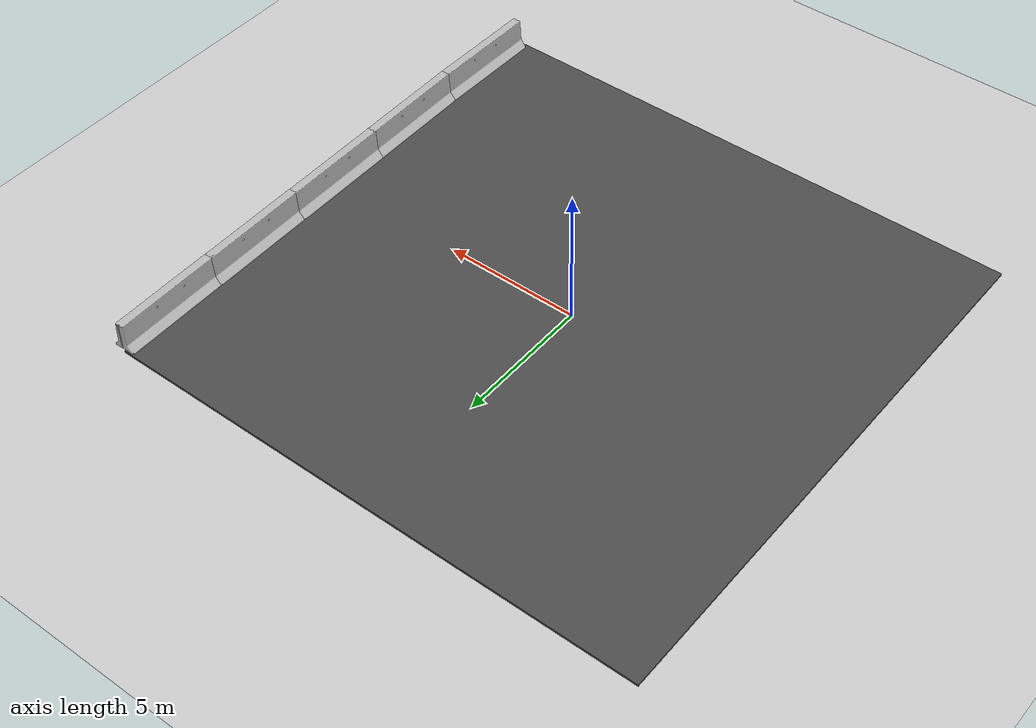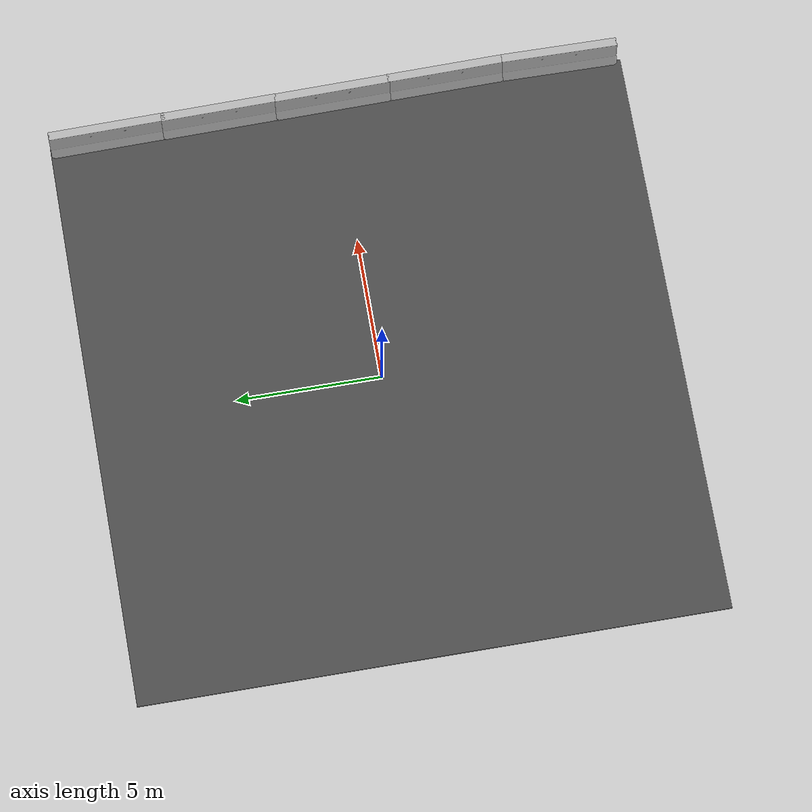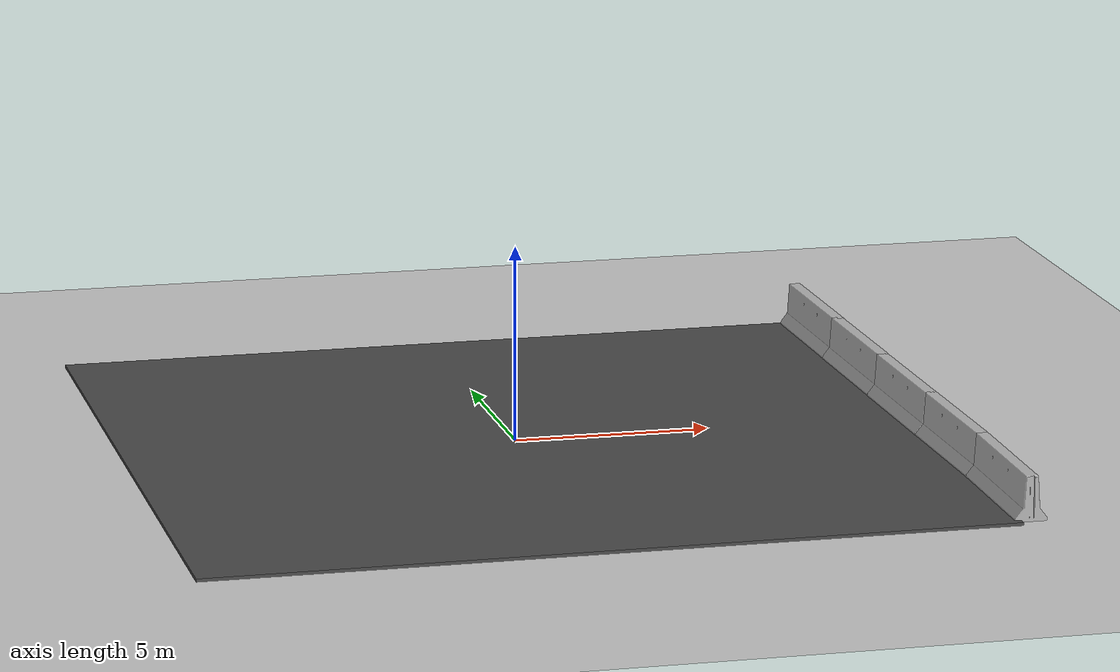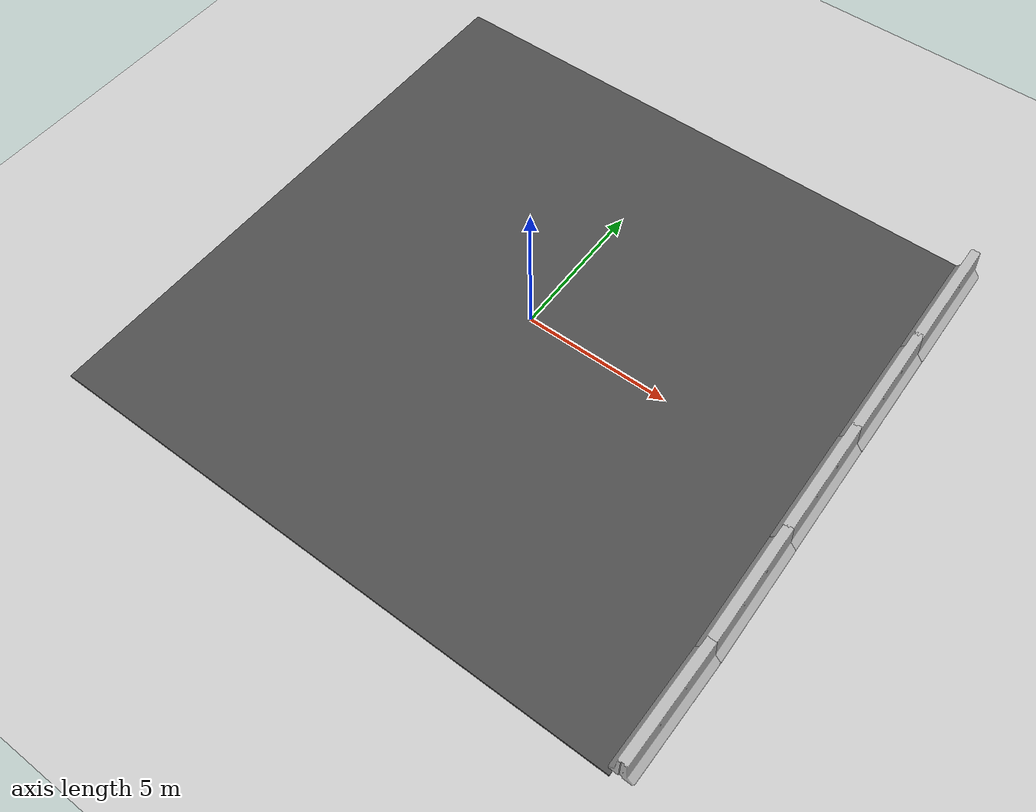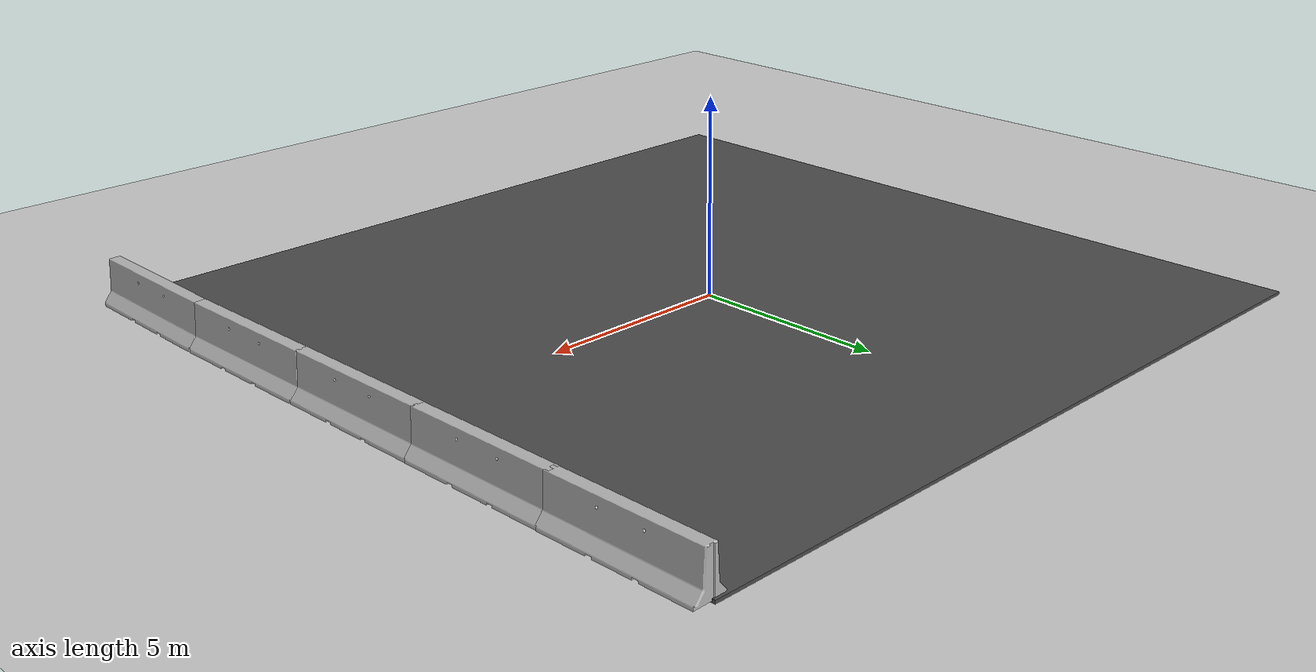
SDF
<sdf version="1.6">
 <world name="default">
  <model name="ground_plane">
   <static>1</static>
   <link name="link">
    <collision name="collision">
     <geometry><plane><normal>0 0 1</normal><size>100 100</size></plane></geometry>
     <surface><friction><ode><mu>100</mu><mu2>50</mu2></ode></friction></surface>
    </collision>
    <visual name="visual">
     <cast_shadows>0</cast_shadows>
     <geometry><plane><normal>0 0 1</normal><size>100 100</size></plane></geometry>
     <material>
      <script><uri>file://media/materials/scripts/gazebo.material</uri><name>Gazebo/Grey</name></script>
     </material>
    </visual>
    <velocity_decay><linear>0</linear><angular>0</angular></velocity_decay>
   </link>
  </model>
  <model name="asphalt_plane">
   <static>1</static>
   <link name="link">
    <collision name="collision"><geometry><box><size>20 20 0.1</size></box></geometry></collision>
    <visual name="visual">
     <cast_shadows>0</cast_shadows>
     <geometry><box><size>20 20 0.1</size></box></geometry>
     <material>
      <script>
       <uri>model://asphalt_plane/materials/scripts</uri>
       <uri>model://asphalt_plane/materials/textures</uri>
       <name>vrc/asphalt</name>
      </script>
     </material>
    </visual>
    <velocity_decay><linear>0</linear><angular>0</angular></velocity_decay>
   </link>
   <pose>0.076733 -0.110379 0 0 -0 0</pose>
  </model>
  <model name="jersey_barrier_12">
   <link name="link">
    <pose>-0.324032 -0.254007 0 0 -0 0</pose>
    <velocity_decay><linear>0</linear><angular>0</angular></velocity_decay>
    <visual name="visual">
     <geometry><mesh><uri>model://jersey_barrier/meshes/jersey_barrier.dae</uri></mesh></geometry>
     <material><shader type="pixel"/></material>
    </visual>
    <collision name="upright">
     <pose>0 0 0.5715 0 -0 0</pose>
     <geometry><box><size>4.06542 0.3063 1.143</size></box></geometry>
     <surface>
      <friction>
       <ode><mu>1</mu><mu2>1</mu2><fdir1>0 0 0</fdir1><slip1>0</slip1><slip2>0</slip2></ode>
       <torsional>
        <coefficient>1</coefficient>
        <patch_radius>0</patch_radius>
        <surface_radius>0</surface_radius>
        <use_patch_radius>1</use_patch_radius>
        <ode><slip>0</slip></ode>
       </torsional>
      </friction>
      <bounce><restitution_coefficient>0</restitution_coefficient><threshold>1e+06</threshold></bounce>
      <contact>
       <collide_without_contact>0</collide_without_contact>
       <collide_without_contact_bitmask>1</collide_without_contact_bitmask>
       <collide_bitmask>1</collide_bitmask>
       <ode>
        <soft_cfm>0</soft_cfm>
        <soft_erp>0.2</soft_erp>
        <kp>1e+13</kp>
        <kd>1</kd>
        <max_vel>0.01</max_vel>
        <min_depth>0</min_depth>
       </ode>
       <bullet>
        <split_impulse>1</split_impulse>
        <split_impulse_penetration_threshold>-0.01</split_impulse_penetration_threshold>
        <soft_cfm>0</soft_cfm>
        <soft_erp>0.2</soft_erp>
        <kp>1e+13</kp>
        <kd>1</kd>
       </bullet>
      </contact>
     </surface>
    </collision>
    <collision name="base">
     <pose>0 0 0.032258 0 -0 0</pose>
     <geometry><box><size>4.06542 0.8107 0.064516</size></box></geometry>
     <surface>
      <friction>
       <ode><mu>1</mu><mu2>1</mu2><fdir1>0 0 0</fdir1><slip1>0</slip1><slip2>0</slip2></ode>
       <torsional>
        <coefficient>1</coefficient>
        <patch_radius>0</patch_radius>
        <surface_radius>0</surface_radius>
        <use_patch_radius>1</use_patch_radius>
        <ode><slip>0</slip></ode>
       </torsional>
      </friction>
      <bounce><restitution_coefficient>0</restitution_coefficient><threshold>1e+06</threshold></bounce>
      <contact>
       <collide_without_contact>0</collide_without_contact>
       <collide_without_contact_bitmask>1</collide_without_contact_bitmask>
       <collide_bitmask>1</collide_bitmask>
       <ode>
        <soft_cfm>0</soft_cfm>
        <soft_erp>0.2</soft_erp>
        <kp>1e+13</kp>
        <kd>1</kd>
        <max_vel>0.01</max_vel>
        <min_depth>0</min_depth>
       </ode>
       <bullet>
        <split_impulse>1</split_impulse>
        <split_impulse_penetration_threshold>-0.01</split_impulse_penetration_threshold>
        <soft_cfm>0</soft_cfm>
        <soft_erp>0.2</soft_erp>
        <kp>1e+13</kp>
        <kd>1</kd>
       </bullet>
      </contact>
     </surface>
    </collision>
    <collision name="base3">
     <pose>0 0 0.2 0 -0 0</pose>
     <geometry><box><size>4.06542 0.5 0.1</size></box></geometry>
     <surface>
      <friction>
       <ode><mu>1</mu><mu2>1</mu2><fdir1>0 0 0</fdir1><slip1>0</slip1><slip2>0</slip2></ode>
       <torsional>
        <coefficient>1</coefficient>
        <patch_radius>0</patch_radius>
        <surface_radius>0</surface_radius>
        <use_patch_radius>1</use_patch_radius>
        <ode><slip>0</slip></ode>
       </torsional>
      </friction>
      <bounce><restitution_coefficient>0</restitution_coefficient><threshold>1e+06</threshold></bounce>
      <contact>
       <collide_without_contact>0</collide_without_contact>
       <collide_without_contact_bitmask>1</collide_without_contact_bitmask>
       <collide_bitmask>1</collide_bitmask>
       <ode>
        <soft_cfm>0</soft_cfm>
        <soft_erp>0.2</soft_erp>
        <kp>1e+13</kp>
        <kd>1</kd>
        <max_vel>0.01</max_vel>
        <min_depth>0</min_depth>
       </ode>
       <bullet>
        <split_impulse>1</split_impulse>
        <split_impulse_penetration_threshold>-0.01</split_impulse_penetration_threshold>
        <soft_cfm>0</soft_cfm>
        <soft_erp>0.2</soft_erp>
        <kp>1e+13</kp>
        <kd>1</kd>
       </bullet>
      </contact>
     </surface>
    </collision>
    <collision name="base2">
     <pose>0 0 0.1 0 -0 0</pose>
     <geometry><box><size>4.06542 0.65 0.1</size></box></geometry>
     <surface>
      <friction>
       <ode><mu>1</mu><mu2>1</mu2><fdir1>0 0 0</fdir1><slip1>0</slip1><slip2>0</slip2></ode>
       <torsional>
        <coefficient>1</coefficient>
        <patch_radius>0</patch_radius>
        <surface_radius>0</surface_radius>
        <use_patch_radius>1</use_patch_radius>
        <ode><slip>0</slip></ode>
       </torsional>
      </friction>
      <bounce><restitution_coefficient>0</restitution_coefficient><threshold>1e+06</threshold></bounce>
      <contact>
       <collide_without_contact>0</collide_without_contact>
       <collide_without_contact_bitmask>1</collide_without_contact_bitmask>
       <collide_bitmask>1</collide_bitmask>
       <ode>
        <soft_cfm>0</soft_cfm>
        <soft_erp>0.2</soft_erp>
        <kp>1e+13</kp>
        <kd>1</kd>
        <max_vel>0.01</max_vel>
        <min_depth>0</min_depth>
       </ode>
       <bullet>
        <split_impulse>1</split_impulse>
        <split_impulse_penetration_threshold>-0.01</split_impulse_penetration_threshold>
        <soft_cfm>0</soft_cfm>
        <soft_erp>0.2</soft_erp>
        <kp>1e+13</kp>
        <kd>1</kd>
       </bullet>
      </contact>
     </surface>
    </collision>
    <collision name="left-angle">
     <pose>0 -0.224 0.2401 0.9 -0 0</pose>
     <geometry><box><size>4.06542 0.5 0.064516</size></box></geometry>
     <surface>
      <friction>
       <ode><mu>1</mu><mu2>1</mu2><fdir1>0 0 0</fdir1><slip1>0</slip1><slip2>0</slip2></ode>
       <torsional>
        <coefficient>1</coefficient>
        <patch_radius>0</patch_radius>
        <surface_radius>0</surface_radius>
        <use_patch_radius>1</use_patch_radius>
        <ode><slip>0</slip></ode>
       </torsional>
      </friction>
      <bounce><restitution_coefficient>0</restitution_coefficient><threshold>1e+06</threshold></bounce>
      <contact>
       <collide_without_contact>0</collide_without_contact>
       <collide_without_contact_bitmask>1</collide_without_contact_bitmask>
       <collide_bitmask>1</collide_bitmask>
       <ode>
        <soft_cfm>0</soft_cfm>
        <soft_erp>0.2</soft_erp>
        <kp>1e+13</kp>
        <kd>1</kd>
        <max_vel>0.01</max_vel>
        <min_depth>0</min_depth>
       </ode>
       <bullet>
        <split_impulse>1</split_impulse>
        <split_impulse_penetration_threshold>-0.01</split_impulse_penetration_threshold>
        <soft_cfm>0</soft_cfm>
        <soft_erp>0.2</soft_erp>
        <kp>1e+13</kp>
        <kd>1</kd>
       </bullet>
      </contact>
     </surface>
    </collision>
    <collision name="right-angle">
     <pose>0 0.224 0.2401 -0.9 0 0</pose>
     <geometry><box><size>4.06542 0.5 0.064516</size></box></geometry>
     <surface>
      <friction>
       <ode><mu>1</mu><mu2>1</mu2><fdir1>0 0 0</fdir1><slip1>0</slip1><slip2>0</slip2></ode>
       <torsional>
        <coefficient>1</coefficient>
        <patch_radius>0</patch_radius>
        <surface_radius>0</surface_radius>
        <use_patch_radius>1</use_patch_radius>
        <ode><slip>0</slip></ode>
       </torsional>
      </friction>
      <bounce><restitution_coefficient>0</restitution_coefficient><threshold>1e+06</threshold></bounce>
      <contact>
       <collide_without_contact>0</collide_without_contact>
       <collide_without_contact_bitmask>1</collide_without_contact_bitmask>
       <collide_bitmask>1</collide_bitmask>
       <ode>
        <soft_cfm>0</soft_cfm>
        <soft_erp>0.2</soft_erp>
        <kp>1e+13</kp>
        <kd>1</kd>
        <max_vel>0.01</max_vel>
        <min_depth>0</min_depth>
       </ode>
       <bullet>
        <split_impulse>1</split_impulse>
        <split_impulse_penetration_threshold>-0.01</split_impulse_penetration_threshold>
        <soft_cfm>0</soft_cfm>
        <soft_erp>0.2</soft_erp>
        <kp>1e+13</kp>
        <kd>1</kd>
       </bullet>
      </contact>
     </surface>
    </collision>
   </link>
   <static>1</static>
   <pose>10.0879 -7.62158 0 0 -0 1.56</pose>
  </model>
  <model name="jersey_barrier_8_clone_4">
   <link name="link">
    <pose>-0.727355 1.16834 0 0 -0 1.58626</pose>
    <visual name="visual">
     <geometry><mesh><uri>model://jersey_barrier/meshes/jersey_barrier.dae</uri></mesh></geometry>
     <material><shader type="pixel"/></material>
    </visual>
    <collision name="upright">
     <pose>0 0 0.5715 0 -0 0</pose>
     <geometry><box><size>4.06542 0.3063 1.143</size></box></geometry>
     <surface>
      <friction>
       <ode><mu>1</mu><mu2>1</mu2><fdir1>0 0 0</fdir1><slip1>0</slip1><slip2>0</slip2></ode>
       <torsional>
        <coefficient>1</coefficient>
        <patch_radius>0</patch_radius>
        <surface_radius>0</surface_radius>
        <use_patch_radius>1</use_patch_radius>
        <ode><slip>0</slip></ode>
       </torsional>
      </friction>
      <bounce><restitution_coefficient>0</restitution_coefficient><threshold>1e+06</threshold></bounce>
      <contact>
       <collide_without_contact>0</collide_without_contact>
       <collide_without_contact_bitmask>1</collide_without_contact_bitmask>
       <collide_bitmask>1</collide_bitmask>
       <ode>
        <soft_cfm>0</soft_cfm>
        <soft_erp>0.2</soft_erp>
        <kp>1e+13</kp>
        <kd>1</kd>
        <max_vel>0.01</max_vel>
        <min_depth>0</min_depth>
       </ode>
       <bullet>
        <split_impulse>1</split_impulse>
        <split_impulse_penetration_threshold>-0.01</split_impulse_penetration_threshold>
        <soft_cfm>0</soft_cfm>
        <soft_erp>0.2</soft_erp>
        <kp>1e+13</kp>
        <kd>1</kd>
       </bullet>
      </contact>
     </surface>
    </collision>
    <collision name="base">
     <pose>0 0 0.032258 0 -0 0</pose>
     <geometry><box><size>4.06542 0.8107 0.064516</size></box></geometry>
     <surface>
      <friction>
       <ode><mu>1</mu><mu2>1</mu2><fdir1>0 0 0</fdir1><slip1>0</slip1><slip2>0</slip2></ode>
       <torsional>
        <coefficient>1</coefficient>
        <patch_radius>0</patch_radius>
        <surface_radius>0</surface_radius>
        <use_patch_radius>1</use_patch_radius>
        <ode><slip>0</slip></ode>
       </torsional>
      </friction>
      <bounce><restitution_coefficient>0</restitution_coefficient><threshold>1e+06</threshold></bounce>
      <contact>
       <collide_without_contact>0</collide_without_contact>
       <collide_without_contact_bitmask>1</collide_without_contact_bitmask>
       <collide_bitmask>1</collide_bitmask>
       <ode>
        <soft_cfm>0</soft_cfm>
        <soft_erp>0.2</soft_erp>
        <kp>1e+13</kp>
        <kd>1</kd>
        <max_vel>0.01</max_vel>
        <min_depth>0</min_depth>
       </ode>
       <bullet>
        <split_impulse>1</split_impulse>
        <split_impulse_penetration_threshold>-0.01</split_impulse_penetration_threshold>
        <soft_cfm>0</soft_cfm>
        <soft_erp>0.2</soft_erp>
        <kp>1e+13</kp>
        <kd>1</kd>
       </bullet>
      </contact>
     </surface>
    </collision>
    <collision name="base2">
     <pose>0 0 0.1 0 -0 0</pose>
     <geometry><box><size>4.06542 0.65 0.1</size></box></geometry>
     <surface>
      <friction>
       <ode><mu>1</mu><mu2>1</mu2><fdir1>0 0 0</fdir1><slip1>0</slip1><slip2>0</slip2></ode>
       <torsional>
        <coefficient>1</coefficient>
        <patch_radius>0</patch_radius>
        <surface_radius>0</surface_radius>
        <use_patch_radius>1</use_patch_radius>
        <ode><slip>0</slip></ode>
       </torsional>
      </friction>
      <bounce><restitution_coefficient>0</restitution_coefficient><threshold>1e+06</threshold></bounce>
      <contact>
       <collide_without_contact>0</collide_without_contact>
       <collide_without_contact_bitmask>1</collide_without_contact_bitmask>
       <collide_bitmask>1</collide_bitmask>
       <ode>
        <soft_cfm>0</soft_cfm>
        <soft_erp>0.2</soft_erp>
        <kp>1e+13</kp>
        <kd>1</kd>
        <max_vel>0.01</max_vel>
        <min_depth>0</min_depth>
       </ode>
       <bullet>
        <split_impulse>1</split_impulse>
        <split_impulse_penetration_threshold>-0.01</split_impulse_penetration_threshold>
        <soft_cfm>0</soft_cfm>
        <soft_erp>0.2</soft_erp>
        <kp>1e+13</kp>
        <kd>1</kd>
       </bullet>
      </contact>
     </surface>
    </collision>
    <collision name="base3">
     <pose>0 0 0.2 0 -0 0</pose>
     <geometry><box><size>4.06542 0.5 0.1</size></box></geometry>
     <surface>
      <friction>
       <ode><mu>1</mu><mu2>1</mu2><fdir1>0 0 0</fdir1><slip1>0</slip1><slip2>0</slip2></ode>
       <torsional>
        <coefficient>1</coefficient>
        <patch_radius>0</patch_radius>
        <surface_radius>0</surface_radius>
        <use_patch_radius>1</use_patch_radius>
        <ode><slip>0</slip></ode>
       </torsional>
      </friction>
      <bounce><restitution_coefficient>0</restitution_coefficient><threshold>1e+06</threshold></bounce>
      <contact>
       <collide_without_contact>0</collide_without_contact>
       <collide_without_contact_bitmask>1</collide_without_contact_bitmask>
       <collide_bitmask>1</collide_bitmask>
       <ode>
        <soft_cfm>0</soft_cfm>
        <soft_erp>0.2</soft_erp>
        <kp>1e+13</kp>
        <kd>1</kd>
        <max_vel>0.01</max_vel>
        <min_depth>0</min_depth>
       </ode>
       <bullet>
        <split_impulse>1</split_impulse>
        <split_impulse_penetration_threshold>-0.01</split_impulse_penetration_threshold>
        <soft_cfm>0</soft_cfm>
        <soft_erp>0.2</soft_erp>
        <kp>1e+13</kp>
        <kd>1</kd>
       </bullet>
      </contact>
     </surface>
    </collision>
    <collision name="left-angle">
     <pose>0 -0.224 0.2401 0.9 -0 0</pose>
     <geometry><box><size>4.06542 0.5 0.064516</size></box></geometry>
     <surface>
      <friction>
       <ode><mu>1</mu><mu2>1</mu2><fdir1>0 0 0</fdir1><slip1>0</slip1><slip2>0</slip2></ode>
       <torsional>
        <coefficient>1</coefficient>
        <patch_radius>0</patch_radius>
        <surface_radius>0</surface_radius>
        <use_patch_radius>1</use_patch_radius>
        <ode><slip>0</slip></ode>
       </torsional>
      </friction>
      <bounce><restitution_coefficient>0</restitution_coefficient><threshold>1e+06</threshold></bounce>
      <contact>
       <collide_without_contact>0</collide_without_contact>
       <collide_without_contact_bitmask>1</collide_without_contact_bitmask>
       <collide_bitmask>1</collide_bitmask>
       <ode>
        <soft_cfm>0</soft_cfm>
        <soft_erp>0.2</soft_erp>
        <kp>1e+13</kp>
        <kd>1</kd>
        <max_vel>0.01</max_vel>
        <min_depth>0</min_depth>
       </ode>
       <bullet>
        <split_impulse>1</split_impulse>
        <split_impulse_penetration_threshold>-0.01</split_impulse_penetration_threshold>
        <soft_cfm>0</soft_cfm>
        <soft_erp>0.2</soft_erp>
        <kp>1e+13</kp>
        <kd>1</kd>
       </bullet>
      </contact>
     </surface>
    </collision>
    <collision name="right-angle">
     <pose>0 0.224 0.2401 -0.9 0 0</pose>
     <geometry><box><size>4.06542 0.5 0.064516</size></box></geometry>
     <surface>
      <friction>
       <ode><mu>1</mu><mu2>1</mu2><fdir1>0 0 0</fdir1><slip1>0</slip1><slip2>0</slip2></ode>
       <torsional>
        <coefficient>1</coefficient>
        <patch_radius>0</patch_radius>
        <surface_radius>0</surface_radius>
        <use_patch_radius>1</use_patch_radius>
        <ode><slip>0</slip></ode>
       </torsional>
      </friction>
      <bounce><restitution_coefficient>0</restitution_coefficient><threshold>1e+06</threshold></bounce>
      <contact>
       <collide_without_contact>0</collide_without_contact>
       <collide_without_contact_bitmask>1</collide_without_contact_bitmask>
       <collide_bitmask>1</collide_bitmask>
       <ode>
        <soft_cfm>0</soft_cfm>
        <soft_erp>0.2</soft_erp>
        <kp>1e+13</kp>
        <kd>1</kd>
        <max_vel>0.01</max_vel>
        <min_depth>0</min_depth>
       </ode>
       <bullet>
        <split_impulse>1</split_impulse>
        <split_impulse_penetration_threshold>-0.01</split_impulse_penetration_threshold>
        <soft_cfm>0</soft_cfm>
        <soft_erp>0.2</soft_erp>
        <kp>1e+13</kp>
        <kd>1</kd>
       </bullet>
      </contact>
     </surface>
    </collision>
   </link>
   <static>1</static>
   <pose>11.0558 -5.1195 0 0 -0 0</pose>
  </model>
  <model name="jersey_barrier_8_clone_5">
   <link name="link">
    <pose>-0.727355 1.16834 0 0 -0 1.58626</pose>
    <visual name="visual">
     <geometry><mesh><uri>model://jersey_barrier/meshes/jersey_barrier.dae</uri></mesh></geometry>
     <material><shader type="pixel"/></material>
    </visual>
    <collision name="upright">
     <pose>0 0 0.5715 0 -0 0</pose>
     <geometry><box><size>4.06542 0.3063 1.143</size></box></geometry>
     <surface>
      <friction>
       <ode><mu>1</mu><mu2>1</mu2><fdir1>0 0 0</fdir1><slip1>0</slip1><slip2>0</slip2></ode>
       <torsional>
        <coefficient>1</coefficient>
        <patch_radius>0</patch_radius>
        <surface_radius>0</surface_radius>
        <use_patch_radius>1</use_patch_radius>
        <ode><slip>0</slip></ode>
       </torsional>
      </friction>
      <bounce><restitution_coefficient>0</restitution_coefficient><threshold>1e+06</threshold></bounce>
      <contact>
       <collide_without_contact>0</collide_without_contact>
       <collide_without_contact_bitmask>1</collide_without_contact_bitmask>
       <collide_bitmask>1</collide_bitmask>
       <ode>
        <soft_cfm>0</soft_cfm>
        <soft_erp>0.2</soft_erp>
        <kp>1e+13</kp>
        <kd>1</kd>
        <max_vel>0.01</max_vel>
        <min_depth>0</min_depth>
       </ode>
       <bullet>
        <split_impulse>1</split_impulse>
        <split_impulse_penetration_threshold>-0.01</split_impulse_penetration_threshold>
        <soft_cfm>0</soft_cfm>
        <soft_erp>0.2</soft_erp>
        <kp>1e+13</kp>
        <kd>1</kd>
       </bullet>
      </contact>
     </surface>
    </collision>
    <collision name="base">
     <pose>0 0 0.032258 0 -0 0</pose>
     <geometry><box><size>4.06542 0.8107 0.064516</size></box></geometry>
     <surface>
      <friction>
       <ode><mu>1</mu><mu2>1</mu2><fdir1>0 0 0</fdir1><slip1>0</slip1><slip2>0</slip2></ode>
       <torsional>
        <coefficient>1</coefficient>
        <patch_radius>0</patch_radius>
        <surface_radius>0</surface_radius>
        <use_patch_radius>1</use_patch_radius>
        <ode><slip>0</slip></ode>
       </torsional>
      </friction>
      <bounce><restitution_coefficient>0</restitution_coefficient><threshold>1e+06</threshold></bounce>
      <contact>
       <collide_without_contact>0</collide_without_contact>
       <collide_without_contact_bitmask>1</collide_without_contact_bitmask>
       <collide_bitmask>1</collide_bitmask>
       <ode>
        <soft_cfm>0</soft_cfm>
        <soft_erp>0.2</soft_erp>
        <kp>1e+13</kp>
        <kd>1</kd>
        <max_vel>0.01</max_vel>
        <min_depth>0</min_depth>
       </ode>
       <bullet>
        <split_impulse>1</split_impulse>
        <split_impulse_penetration_threshold>-0.01</split_impulse_penetration_threshold>
        <soft_cfm>0</soft_cfm>
        <soft_erp>0.2</soft_erp>
        <kp>1e+13</kp>
        <kd>1</kd>
       </bullet>
      </contact>
     </surface>
    </collision>
    <collision name="base2">
     <pose>0 0 0.1 0 -0 0</pose>
     <geometry><box><size>4.06542 0.65 0.1</size></box></geometry>
     <surface>
      <friction>
       <ode><mu>1</mu><mu2>1</mu2><fdir1>0 0 0</fdir1><slip1>0</slip1><slip2>0</slip2></ode>
       <torsional>
        <coefficient>1</coefficient>
        <patch_radius>0</patch_radius>
        <surface_radius>0</surface_radius>
        <use_patch_radius>1</use_patch_radius>
        <ode><slip>0</slip></ode>
       </torsional>
      </friction>
      <bounce><restitution_coefficient>0</restitution_coefficient><threshold>1e+06</threshold></bounce>
      <contact>
       <collide_without_contact>0</collide_without_contact>
       <collide_without_contact_bitmask>1</collide_without_contact_bitmask>
       <collide_bitmask>1</collide_bitmask>
       <ode>
        <soft_cfm>0</soft_cfm>
        <soft_erp>0.2</soft_erp>
        <kp>1e+13</kp>
        <kd>1</kd>
        <max_vel>0.01</max_vel>
        <min_depth>0</min_depth>
       </ode>
       <bullet>
        <split_impulse>1</split_impulse>
        <split_impulse_penetration_threshold>-0.01</split_impulse_penetration_threshold>
        <soft_cfm>0</soft_cfm>
        <soft_erp>0.2</soft_erp>
        <kp>1e+13</kp>
        <kd>1</kd>
       </bullet>
      </contact>
     </surface>
    </collision>
    <collision name="base3">
     <pose>0 0 0.2 0 -0 0</pose>
     <geometry><box><size>4.06542 0.5 0.1</size></box></geometry>
     <surface>
      <friction>
       <ode><mu>1</mu><mu2>1</mu2><fdir1>0 0 0</fdir1><slip1>0</slip1><slip2>0</slip2></ode>
       <torsional>
        <coefficient>1</coefficient>
        <patch_radius>0</patch_radius>
        <surface_radius>0</surface_radius>
        <use_patch_radius>1</use_patch_radius>
        <ode><slip>0</slip></ode>
       </torsional>
      </friction>
      <bounce><restitution_coefficient>0</restitution_coefficient><threshold>1e+06</threshold></bounce>
      <contact>
       <collide_without_contact>0</collide_without_contact>
       <collide_without_contact_bitmask>1</collide_without_contact_bitmask>
       <collide_bitmask>1</collide_bitmask>
       <ode>
        <soft_cfm>0</soft_cfm>
        <soft_erp>0.2</soft_erp>
        <kp>1e+13</kp>
        <kd>1</kd>
        <max_vel>0.01</max_vel>
        <min_depth>0</min_depth>
       </ode>
       <bullet>
        <split_impulse>1</split_impulse>
        <split_impulse_penetration_threshold>-0.01</split_impulse_penetration_threshold>
        <soft_cfm>0</soft_cfm>
        <soft_erp>0.2</soft_erp>
        <kp>1e+13</kp>
        <kd>1</kd>
       </bullet>
      </contact>
     </surface>
    </collision>
    <collision name="left-angle">
     <pose>0 -0.224 0.2401 0.9 -0 0</pose>
     <geometry><box><size>4.06542 0.5 0.064516</size></box></geometry>
     <surface>
      <friction>
       <ode><mu>1</mu><mu2>1</mu2><fdir1>0 0 0</fdir1><slip1>0</slip1><slip2>0</slip2></ode>
       <torsional>
        <coefficient>1</coefficient>
        <patch_radius>0</patch_radius>
        <surface_radius>0</surface_radius>
        <use_patch_radius>1</use_patch_radius>
        <ode><slip>0</slip></ode>
       </torsional>
      </friction>
      <bounce><restitution_coefficient>0</restitution_coefficient><threshold>1e+06</threshold></bounce>
      <contact>
       <collide_without_contact>0</collide_without_contact>
       <collide_without_contact_bitmask>1</collide_without_contact_bitmask>
       <collide_bitmask>1</collide_bitmask>
       <ode>
        <soft_cfm>0</soft_cfm>
        <soft_erp>0.2</soft_erp>
        <kp>1e+13</kp>
        <kd>1</kd>
        <max_vel>0.01</max_vel>
        <min_depth>0</min_depth>
       </ode>
       <bullet>
        <split_impulse>1</split_impulse>
        <split_impulse_penetration_threshold>-0.01</split_impulse_penetration_threshold>
        <soft_cfm>0</soft_cfm>
        <soft_erp>0.2</soft_erp>
        <kp>1e+13</kp>
        <kd>1</kd>
       </bullet>
      </contact>
     </surface>
    </collision>
    <collision name="right-angle">
     <pose>0 0.224 0.2401 -0.9 0 0</pose>
     <geometry><box><size>4.06542 0.5 0.064516</size></box></geometry>
     <surface>
      <friction>
       <ode><mu>1</mu><mu2>1</mu2><fdir1>0 0 0</fdir1><slip1>0</slip1><slip2>0</slip2></ode>
       <torsional>
        <coefficient>1</coefficient>
        <patch_radius>0</patch_radius>
        <surface_radius>0</surface_radius>
        <use_patch_radius>1</use_patch_radius>
        <ode><slip>0</slip></ode>
       </torsional>
      </friction>
      <bounce><restitution_coefficient>0</restitution_coefficient><threshold>1e+06</threshold></bounce>
      <contact>
       <collide_without_contact>0</collide_without_contact>
       <collide_without_contact_bitmask>1</collide_without_contact_bitmask>
       <collide_bitmask>1</collide_bitmask>
       <ode>
        <soft_cfm>0</soft_cfm>
        <soft_erp>0.2</soft_erp>
        <kp>1e+13</kp>
        <kd>1</kd>
        <max_vel>0.01</max_vel>
        <min_depth>0</min_depth>
       </ode>
       <bullet>
        <split_impulse>1</split_impulse>
        <split_impulse_penetration_threshold>-0.01</split_impulse_penetration_threshold>
        <soft_cfm>0</soft_cfm>
        <soft_erp>0.2</soft_erp>
        <kp>1e+13</kp>
        <kd>1</kd>
       </bullet>
      </contact>
     </surface>
    </collision>
   </link>
   <static>1</static>
   <pose>10.9891 -1.1672 0 0 -0 0</pose>
  </model>
  <model name="jersey_barrier_8_clone_6">
   <link name="link">
    <pose>-0.727355 1.16834 0 0 -0 1.58626</pose>
    <visual name="visual">
     <geometry><mesh><uri>model://jersey_barrier/meshes/jersey_barrier.dae</uri></mesh></geometry>
     <material><shader type="pixel"/></material>
    </visual>
    <collision name="upright">
     <pose>0 0 0.5715 0 -0 0</pose>
     <geometry><box><size>4.06542 0.3063 1.143</size></box></geometry>
     <surface>
      <friction>
       <ode><mu>1</mu><mu2>1</mu2><fdir1>0 0 0</fdir1><slip1>0</slip1><slip2>0</slip2></ode>
       <torsional>
        <coefficient>1</coefficient>
        <patch_radius>0</patch_radius>
        <surface_radius>0</surface_radius>
        <use_patch_radius>1</use_patch_radius>
        <ode><slip>0</slip></ode>
       </torsional>
      </friction>
      <bounce><restitution_coefficient>0</restitution_coefficient><threshold>1e+06</threshold></bounce>
      <contact>
       <collide_without_contact>0</collide_without_contact>
       <collide_without_contact_bitmask>1</collide_without_contact_bitmask>
       <collide_bitmask>1</collide_bitmask>
       <ode>
        <soft_cfm>0</soft_cfm>
        <soft_erp>0.2</soft_erp>
        <kp>1e+13</kp>
        <kd>1</kd>
        <max_vel>0.01</max_vel>
        <min_depth>0</min_depth>
       </ode>
       <bullet>
        <split_impulse>1</split_impulse>
        <split_impulse_penetration_threshold>-0.01</split_impulse_penetration_threshold>
        <soft_cfm>0</soft_cfm>
        <soft_erp>0.2</soft_erp>
        <kp>1e+13</kp>
        <kd>1</kd>
       </bullet>
      </contact>
     </surface>
    </collision>
    <collision name="base">
     <pose>0 0 0.032258 0 -0 0</pose>
     <geometry><box><size>4.06542 0.8107 0.064516</size></box></geometry>
     <surface>
      <friction>
       <ode><mu>1</mu><mu2>1</mu2><fdir1>0 0 0</fdir1><slip1>0</slip1><slip2>0</slip2></ode>
       <torsional>
        <coefficient>1</coefficient>
        <patch_radius>0</patch_radius>
        <surface_radius>0</surface_radius>
        <use_patch_radius>1</use_patch_radius>
        <ode><slip>0</slip></ode>
       </torsional>
      </friction>
      <bounce><restitution_coefficient>0</restitution_coefficient><threshold>1e+06</threshold></bounce>
      <contact>
       <collide_without_contact>0</collide_without_contact>
       <collide_without_contact_bitmask>1</collide_without_contact_bitmask>
       <collide_bitmask>1</collide_bitmask>
       <ode>
        <soft_cfm>0</soft_cfm>
        <soft_erp>0.2</soft_erp>
        <kp>1e+13</kp>
        <kd>1</kd>
        <max_vel>0.01</max_vel>
        <min_depth>0</min_depth>
       </ode>
       <bullet>
        <split_impulse>1</split_impulse>
        <split_impulse_penetration_threshold>-0.01</split_impulse_penetration_threshold>
        <soft_cfm>0</soft_cfm>
        <soft_erp>0.2</soft_erp>
        <kp>1e+13</kp>
        <kd>1</kd>
       </bullet>
      </contact>
     </surface>
    </collision>
    <collision name="base2">
     <pose>0 0 0.1 0 -0 0</pose>
     <geometry><box><size>4.06542 0.65 0.1</size></box></geometry>
     <surface>
      <friction>
       <ode><mu>1</mu><mu2>1</mu2><fdir1>0 0 0</fdir1><slip1>0</slip1><slip2>0</slip2></ode>
       <torsional>
        <coefficient>1</coefficient>
        <patch_radius>0</patch_radius>
        <surface_radius>0</surface_radius>
        <use_patch_radius>1</use_patch_radius>
        <ode><slip>0</slip></ode>
       </torsional>
      </friction>
      <bounce><restitution_coefficient>0</restitution_coefficient><threshold>1e+06</threshold></bounce>
      <contact>
       <collide_without_contact>0</collide_without_contact>
       <collide_without_contact_bitmask>1</collide_without_contact_bitmask>
       <collide_bitmask>1</collide_bitmask>
       <ode>
        <soft_cfm>0</soft_cfm>
        <soft_erp>0.2</soft_erp>
        <kp>1e+13</kp>
        <kd>1</kd>
        <max_vel>0.01</max_vel>
        <min_depth>0</min_depth>
       </ode>
       <bullet>
        <split_impulse>1</split_impulse>
        <split_impulse_penetration_threshold>-0.01</split_impulse_penetration_threshold>
        <soft_cfm>0</soft_cfm>
        <soft_erp>0.2</soft_erp>
        <kp>1e+13</kp>
        <kd>1</kd>
       </bullet>
      </contact>
     </surface>
    </collision>
    <collision name="base3">
     <pose>0 0 0.2 0 -0 0</pose>
     <geometry><box><size>4.06542 0.5 0.1</size></box></geometry>
     <surface>
      <friction>
       <ode><mu>1</mu><mu2>1</mu2><fdir1>0 0 0</fdir1><slip1>0</slip1><slip2>0</slip2></ode>
       <torsional>
        <coefficient>1</coefficient>
        <patch_radius>0</patch_radius>
        <surface_radius>0</surface_radius>
        <use_patch_radius>1</use_patch_radius>
        <ode><slip>0</slip></ode>
       </torsional>
      </friction>
      <bounce><restitution_coefficient>0</restitution_coefficient><threshold>1e+06</threshold></bounce>
      <contact>
       <collide_without_contact>0</collide_without_contact>
       <collide_without_contact_bitmask>1</collide_without_contact_bitmask>
       <collide_bitmask>1</collide_bitmask>
       <ode>
        <soft_cfm>0</soft_cfm>
        <soft_erp>0.2</soft_erp>
        <kp>1e+13</kp>
        <kd>1</kd>
        <max_vel>0.01</max_vel>
        <min_depth>0</min_depth>
       </ode>
       <bullet>
        <split_impulse>1</split_impulse>
        <split_impulse_penetration_threshold>-0.01</split_impulse_penetration_threshold>
        <soft_cfm>0</soft_cfm>
        <soft_erp>0.2</soft_erp>
        <kp>1e+13</kp>
        <kd>1</kd>
       </bullet>
      </contact>
     </surface>
    </collision>
    <collision name="left-angle">
     <pose>0 -0.224 0.2401 0.9 -0 0</pose>
     <geometry><box><size>4.06542 0.5 0.064516</size></box></geometry>
     <surface>
      <friction>
       <ode><mu>1</mu><mu2>1</mu2><fdir1>0 0 0</fdir1><slip1>0</slip1><slip2>0</slip2></ode>
       <torsional>
        <coefficient>1</coefficient>
        <patch_radius>0</patch_radius>
        <surface_radius>0</surface_radius>
        <use_patch_radius>1</use_patch_radius>
        <ode><slip>0</slip></ode>
       </torsional>
      </friction>
      <bounce><restitution_coefficient>0</restitution_coefficient><threshold>1e+06</threshold></bounce>
      <contact>
       <collide_without_contact>0</collide_without_contact>
       <collide_without_contact_bitmask>1</collide_without_contact_bitmask>
       <collide_bitmask>1</collide_bitmask>
       <ode>
        <soft_cfm>0</soft_cfm>
        <soft_erp>0.2</soft_erp>
        <kp>1e+13</kp>
        <kd>1</kd>
        <max_vel>0.01</max_vel>
        <min_depth>0</min_depth>
       </ode>
       <bullet>
        <split_impulse>1</split_impulse>
        <split_impulse_penetration_threshold>-0.01</split_impulse_penetration_threshold>
        <soft_cfm>0</soft_cfm>
        <soft_erp>0.2</soft_erp>
        <kp>1e+13</kp>
        <kd>1</kd>
       </bullet>
      </contact>
     </surface>
    </collision>
    <collision name="right-angle">
     <pose>0 0.224 0.2401 -0.9 0 0</pose>
     <geometry><box><size>4.06542 0.5 0.064516</size></box></geometry>
     <surface>
      <friction>
       <ode><mu>1</mu><mu2>1</mu2><fdir1>0 0 0</fdir1><slip1>0</slip1><slip2>0</slip2></ode>
       <torsional>
        <coefficient>1</coefficient>
        <patch_radius>0</patch_radius>
        <surface_radius>0</surface_radius>
        <use_patch_radius>1</use_patch_radius>
        <ode><slip>0</slip></ode>
       </torsional>
      </friction>
      <bounce><restitution_coefficient>0</restitution_coefficient><threshold>1e+06</threshold></bounce>
      <contact>
       <collide_without_contact>0</collide_without_contact>
       <collide_without_contact_bitmask>1</collide_without_contact_bitmask>
       <collide_bitmask>1</collide_bitmask>
       <ode>
        <soft_cfm>0</soft_cfm>
        <soft_erp>0.2</soft_erp>
        <kp>1e+13</kp>
        <kd>1</kd>
        <max_vel>0.01</max_vel>
        <min_depth>0</min_depth>
       </ode>
       <bullet>
        <split_impulse>1</split_impulse>
        <split_impulse_penetration_threshold>-0.01</split_impulse_penetration_threshold>
        <soft_cfm>0</soft_cfm>
        <soft_erp>0.2</soft_erp>
        <kp>1e+13</kp>
        <kd>1</kd>
       </bullet>
      </contact>
     </surface>
    </collision>
   </link>
   <static>1</static>
   <pose>10.938 2.78633 0 0 -0 0</pose>
  </model>
  <model name="jersey_barrier_8_clone_7">
   <link name="link">
    <pose>-0.727355 1.16834 0 0 -0 1.58626</pose>
    <visual name="visual">
     <geometry><mesh><uri>model://jersey_barrier/meshes/jersey_barrier.dae</uri></mesh></geometry>
     <material><shader type="pixel"/></material>
    </visual>
    <collision name="upright">
     <pose>0 0 0.5715 0 -0 0</pose>
     <geometry><box><size>4.06542 0.3063 1.143</size></box></geometry>
     <surface>
      <friction>
       <ode><mu>1</mu><mu2>1</mu2><fdir1>0 0 0</fdir1><slip1>0</slip1><slip2>0</slip2></ode>
       <torsional>
        <coefficient>1</coefficient>
        <patch_radius>0</patch_radius>
        <surface_radius>0</surface_radius>
        <use_patch_radius>1</use_patch_radius>
        <ode><slip>0</slip></ode>
       </torsional>
      </friction>
      <bounce><restitution_coefficient>0</restitution_coefficient><threshold>1e+06</threshold></bounce>
      <contact>
       <collide_without_contact>0</collide_without_contact>
       <collide_without_contact_bitmask>1</collide_without_contact_bitmask>
       <collide_bitmask>1</collide_bitmask>
       <ode>
        <soft_cfm>0</soft_cfm>
        <soft_erp>0.2</soft_erp>
        <kp>1e+13</kp>
        <kd>1</kd>
        <max_vel>0.01</max_vel>
        <min_depth>0</min_depth>
       </ode>
       <bullet>
        <split_impulse>1</split_impulse>
        <split_impulse_penetration_threshold>-0.01</split_impulse_penetration_threshold>
        <soft_cfm>0</soft_cfm>
        <soft_erp>0.2</soft_erp>
        <kp>1e+13</kp>
        <kd>1</kd>
       </bullet>
      </contact>
     </surface>
    </collision>
    <collision name="base">
     <pose>0 0 0.032258 0 -0 0</pose>
     <geometry><box><size>4.06542 0.8107 0.064516</size></box></geometry>
     <surface>
      <friction>
       <ode><mu>1</mu><mu2>1</mu2><fdir1>0 0 0</fdir1><slip1>0</slip1><slip2>0</slip2></ode>
       <torsional>
        <coefficient>1</coefficient>
        <patch_radius>0</patch_radius>
        <surface_radius>0</surface_radius>
        <use_patch_radius>1</use_patch_radius>
        <ode><slip>0</slip></ode>
       </torsional>
      </friction>
      <bounce><restitution_coefficient>0</restitution_coefficient><threshold>1e+06</threshold></bounce>
      <contact>
       <collide_without_contact>0</collide_without_contact>
       <collide_without_contact_bitmask>1</collide_without_contact_bitmask>
       <collide_bitmask>1</collide_bitmask>
       <ode>
        <soft_cfm>0</soft_cfm>
        <soft_erp>0.2</soft_erp>
        <kp>1e+13</kp>
        <kd>1</kd>
        <max_vel>0.01</max_vel>
        <min_depth>0</min_depth>
       </ode>
       <bullet>
        <split_impulse>1</split_impulse>
        <split_impulse_penetration_threshold>-0.01</split_impulse_penetration_threshold>
        <soft_cfm>0</soft_cfm>
        <soft_erp>0.2</soft_erp>
        <kp>1e+13</kp>
        <kd>1</kd>
       </bullet>
      </contact>
     </surface>
    </collision>
    <collision name="base2">
     <pose>0 0 0.1 0 -0 0</pose>
     <geometry><box><size>4.06542 0.65 0.1</size></box></geometry>
     <surface>
      <friction>
       <ode><mu>1</mu><mu2>1</mu2><fdir1>0 0 0</fdir1><slip1>0</slip1><slip2>0</slip2></ode>
       <torsional>
        <coefficient>1</coefficient>
        <patch_radius>0</patch_radius>
        <surface_radius>0</surface_radius>
        <use_patch_radius>1</use_patch_radius>
        <ode><slip>0</slip></ode>
       </torsional>
      </friction>
      <bounce><restitution_coefficient>0</restitution_coefficient><threshold>1e+06</threshold></bounce>
      <contact>
       <collide_without_contact>0</collide_without_contact>
       <collide_without_contact_bitmask>1</collide_without_contact_bitmask>
       <collide_bitmask>1</collide_bitmask>
       <ode>
        <soft_cfm>0</soft_cfm>
        <soft_erp>0.2</soft_erp>
        <kp>1e+13</kp>
        <kd>1</kd>
        <max_vel>0.01</max_vel>
        <min_depth>0</min_depth>
       </ode>
       <bullet>
        <split_impulse>1</split_impulse>
        <split_impulse_penetration_threshold>-0.01</split_impulse_penetration_threshold>
        <soft_cfm>0</soft_cfm>
        <soft_erp>0.2</soft_erp>
        <kp>1e+13</kp>
        <kd>1</kd>
       </bullet>
      </contact>
     </surface>
    </collision>
    <collision name="base3">
     <pose>0 0 0.2 0 -0 0</pose>
     <geometry><box><size>4.06542 0.5 0.1</size></box></geometry>
     <surface>
      <friction>
       <ode><mu>1</mu><mu2>1</mu2><fdir1>0 0 0</fdir1><slip1>0</slip1><slip2>0</slip2></ode>
       <torsional>
        <coefficient>1</coefficient>
        <patch_radius>0</patch_radius>
        <surface_radius>0</surface_radius>
        <use_patch_radius>1</use_patch_radius>
        <ode><slip>0</slip></ode>
       </torsional>
      </friction>
      <bounce><restitution_coefficient>0</restitution_coefficient><threshold>1e+06</threshold></bounce>
      <contact>
       <collide_without_contact>0</collide_without_contact>
       <collide_without_contact_bitmask>1</collide_without_contact_bitmask>
       <collide_bitmask>1</collide_bitmask>
       <ode>
        <soft_cfm>0</soft_cfm>
        <soft_erp>0.2</soft_erp>
        <kp>1e+13</kp>
        <kd>1</kd>
        <max_vel>0.01</max_vel>
        <min_depth>0</min_depth>
       </ode>
       <bullet>
        <split_impulse>1</split_impulse>
        <split_impulse_penetration_threshold>-0.01</split_impulse_penetration_threshold>
        <soft_cfm>0</soft_cfm>
        <soft_erp>0.2</soft_erp>
        <kp>1e+13</kp>
        <kd>1</kd>
       </bullet>
      </contact>
     </surface>
    </collision>
    <collision name="left-angle">
     <pose>0 -0.224 0.2401 0.9 -0 0</pose>
     <geometry><box><size>4.06542 0.5 0.064516</size></box></geometry>
     <surface>
      <friction>
       <ode><mu>1</mu><mu2>1</mu2><fdir1>0 0 0</fdir1><slip1>0</slip1><slip2>0</slip2></ode>
       <torsional>
        <coefficient>1</coefficient>
        <patch_radius>0</patch_radius>
        <surface_radius>0</surface_radius>
        <use_patch_radius>1</use_patch_radius>
        <ode><slip>0</slip></ode>
       </torsional>
      </friction>
      <bounce><restitution_coefficient>0</restitution_coefficient><threshold>1e+06</threshold></bounce>
      <contact>
       <collide_without_contact>0</collide_without_contact>
       <collide_without_contact_bitmask>1</collide_without_contact_bitmask>
       <collide_bitmask>1</collide_bitmask>
       <ode>
        <soft_cfm>0</soft_cfm>
        <soft_erp>0.2</soft_erp>
        <kp>1e+13</kp>
        <kd>1</kd>
        <max_vel>0.01</max_vel>
        <min_depth>0</min_depth>
       </ode>
       <bullet>
        <split_impulse>1</split_impulse>
        <split_impulse_penetration_threshold>-0.01</split_impulse_penetration_threshold>
        <soft_cfm>0</soft_cfm>
        <soft_erp>0.2</soft_erp>
        <kp>1e+13</kp>
        <kd>1</kd>
       </bullet>
      </contact>
     </surface>
    </collision>
    <collision name="right-angle">
     <pose>0 0.224 0.2401 -0.9 0 0</pose>
     <geometry><box><size>4.06542 0.5 0.064516</size></box></geometry>
     <surface>
      <friction>
       <ode><mu>1</mu><mu2>1</mu2><fdir1>0 0 0</fdir1><slip1>0</slip1><slip2>0</slip2></ode>
       <torsional>
        <coefficient>1</coefficient>
        <patch_radius>0</patch_radius>
        <surface_radius>0</surface_radius>
        <use_patch_radius>1</use_patch_radius>
        <ode><slip>0</slip></ode>
       </torsional>
      </friction>
      <bounce><restitution_coefficient>0</restitution_coefficient><threshold>1e+06</threshold></bounce>
      <contact>
       <collide_without_contact>0</collide_without_contact>
       <collide_without_contact_bitmask>1</collide_without_contact_bitmask>
       <collide_bitmask>1</collide_bitmask>
       <ode>
        <soft_cfm>0</soft_cfm>
        <soft_erp>0.2</soft_erp>
        <kp>1e+13</kp>
        <kd>1</kd>
        <max_vel>0.01</max_vel>
        <min_depth>0</min_depth>
       </ode>
       <bullet>
        <split_impulse>1</split_impulse>
        <split_impulse_penetration_threshold>-0.01</split_impulse_penetration_threshold>
        <soft_cfm>0</soft_cfm>
        <soft_erp>0.2</soft_erp>
        <kp>1e+13</kp>
        <kd>1</kd>
       </bullet>
      </contact>
     </surface>
    </collision>
   </link>
   <static>1</static>
   <pose>10.8885 6.6735 0 0 -0 0</pose>
  </model>
 </world>
</sdf>
